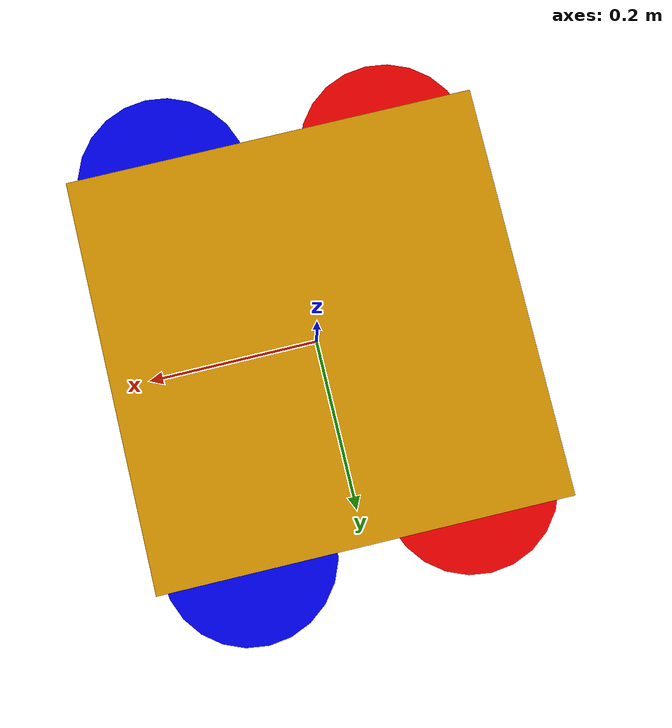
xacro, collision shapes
<?xml version="1.0"?>
<robot name="x3_uav_description" xmlns:xacro="http://ros.org/wiki/xacro">

  <!-- Include all component files -->
  <xacro:include filename="$(find x3_uav_description)/urdf/constants.xacro"/>
  <xacro:include filename="$(find x3_uav_description)/urdf/links.xacro"/>
  <xacro:include filename="$(find x3_uav_description)/urdf/joints.xacro"/>
  <xacro:include filename="$(find x3_uav_description)/urdf/sensors.xacro"/>
  <xacro:include filename="$(find x3_uav_description)/urdf/gazebo.xacro"/>

</robot>

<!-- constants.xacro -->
<robot xmlns:xacro="http://ros.org/wiki/xacro">

  <!-- ====================== ARGUMENTS ====================== -->
  <xacro:arg name="prefix" default=""/>
  <xacro:arg name="use_ignition" default="true"/>
  <xacro:arg name="use_plugin" default="true"/>

  <xacro:property name="prefix" value="$(arg prefix)"/>
  <xacro:property name="use_ignition" value="$(arg use_ignition)"/>
  <xacro:property name="use_plugin" value="$(arg use_plugin)"/>

  <xacro:property name="frame_prefix" value="${prefix + '/' if prefix else ''}"/>
  <xacro:property name="ns_prefix" value="${prefix if prefix else 'x3'}"/>

  <!-- ====================== MATERIALS ====================== -->
  <material name="blue">
    <color rgba="0 0 1 1"/>
  </material>
  <material name="red">
    <color rgba="1 0 0 1"/>
  </material>

</robot>

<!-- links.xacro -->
<robot xmlns:xacro="http://ros.org/wiki/xacro">

<!-- ====================== DUMMY BASE FOOTPRINT LINK (THIS FIXES TF TREE) ====================== -->

  <!-- ====================== BASE LINK ====================== -->
  <link name="${frame_prefix}base_link">
    <inertial>
      <origin xyz="0 0 0" rpy="0 0 0"/>
      <mass value="1.5"/>
      <inertia ixx="0.0347563" ixy="0" ixz="0"
               iyy="0.07"      iyz="0"
               izz="0.0977"/>
    </inertial>

    <collision name="base_link_inertia_collision">
      <origin xyz="0 0 0" rpy="0 0 0"/>
      <geometry>
        <box size="0.47 0.47 0.11"/>
      </geometry>
    </collision>

    <visual name="base_link_inertia_visual">
      <origin xyz="0 0 0" rpy="0 0 3.14159"/>
      <geometry>
        <mesh filename="package://x3_uav_description/meshes/x3.dae" scale="1 1 1"/>
      </geometry>
    </visual>
  </link>

  <!-- ====================== ROTOR 0 ====================== -->
  <link name="${frame_prefix}rotor_0">
    <inertial>
      <origin xyz="0 0 0" rpy="0 0 0"/>
      <mass value="0.005"/>
      <inertia ixx="9.75e-07" ixy="0" ixz="0"
               iyy="4.17041e-05" iyz="0"
               izz="4.26041e-05"/>
    </inertial>

    <collision name="rotor_0_collision">
      <origin xyz="0 0 0" rpy="0 0 0"/>
      <geometry>
        <cylinder radius="0.1" length="0.005"/>
      </geometry>
    </collision>

    <visual name="rotor_0_visual">
      <origin xyz="0 0 0" rpy="0 0 0"/>
      <geometry>
        <mesh filename="package://x3_uav_description/meshes/propeller_ccw.dae" scale="0.1 0.1 0.1"/>
      </geometry>
      <material name="blue"/>
    </visual>
  </link>

  <!-- ====================== ROTOR 1 ====================== -->
  <link name="${frame_prefix}rotor_1">
    <inertial>
      <origin xyz="0 0 0" rpy="0 0 0"/>
      <mass value="0.005"/>
      <inertia ixx="9.75e-07" ixy="0" ixz="0"
               iyy="4.17041e-05" iyz="0"
               izz="4.26041e-05"/>
    </inertial>

    <collision name="rotor_1_collision">
      <origin xyz="0 0 0" rpy="0 0 0"/>
      <geometry>
        <cylinder radius="0.1" length="0.005"/>
      </geometry>
    </collision>

    <visual name="rotor_1_visual">
      <origin xyz="0 0 0" rpy="0 0 0"/>
      <geometry>
        <mesh filename="package://x3_uav_description/meshes/propeller_ccw.dae" scale="0.1 0.1 0.1"/>
      </geometry>
      <material name="red"/>
    </visual>
  </link>

  <!-- ====================== ROTOR 2 ====================== -->
  <link name="${frame_prefix}rotor_2">
    <inertial>
      <origin xyz="0 0 0" rpy="0 0 0"/>
      <mass value="0.005"/>
      <inertia ixx="9.75e-07" ixy="0" ixz="0"
               iyy="4.17041e-05" iyz="0"
               izz="4.26041e-05"/>
    </inertial>

    <collision name="rotor_2_collision">
      <origin xyz="0 0 0" rpy="0 0 0"/>
      <geometry>
        <cylinder radius="0.1" length="0.005"/>
      </geometry>
    </collision>

    <visual name="rotor_2_visual">
      <origin xyz="0 0 0" rpy="0 0 0"/>
      <geometry>
        <mesh filename="package://x3_uav_description/meshes/propeller_cw.dae" scale="0.1 0.1 0.1"/>
      </geometry>
      <material name="blue"/>
    </visual>
  </link>

  <!-- ====================== ROTOR 3 ====================== -->
  <link name="${frame_prefix}rotor_3">
    <inertial>
      <origin xyz="0 0 0" rpy="0 0 0"/>
      <mass value="0.005"/>
      <inertia ixx="9.75e-07" ixy="0" ixz="0"
               iyy="4.17041e-05" iyz="0"
               izz="4.26041e-05"/>
    </inertial>

    <collision name="rotor_3_collision">
      <origin xyz="0 0 0" rpy="0 0 0"/>
      <geometry>
        <cylinder radius="0.1" length="0.005"/>
      </geometry>
    </collision>

    <visual name="rotor_3_visual">
      <origin xyz="0 0 0" rpy="0 0 0"/>
      <geometry>
        <mesh filename="package://x3_uav_description/meshes/propeller_cw.dae" scale="0.1 0.1 0.1"/>
      </geometry>
      <material name="red"/>
    </visual>
  </link>

  <!-- ====================== IMU LINK ====================== -->
  <link name="${frame_prefix}imu_link">
    <visual>
      <origin xyz="0 0 0.01" rpy="0 0 0"/>
      <geometry>
        <box size="0.03 0.03 0.01"/>
      </geometry>
    </visual>
    <inertial>
      <mass value="0.01"/>
      <origin xyz="0 0 0"/>
      <inertia ixx="1e-6" iyy="1e-6" izz="1e-6" ixy="0" ixz="0" iyz="0"/>
    </inertial>
  </link>

<!-- ====================== FRONT CAMERA LINK ====================== -->
<link name="${frame_prefix}front_camera_link">
  <visual>
    <origin xyz="0 0 0" rpy="0 0 0"/>
    <geometry>
      <box size="0.02 0.05 0.02"/>
    </geometry>
  </visual>
  <inertial>
    <mass value="0.01"/>
    <origin xyz="0 0 0"/>
    <inertia ixx="1e-6" iyy="1e-6" izz="1e-6" ixy="0" ixz="0" iyz="0"/>
  </inertial>
  <collision>
    <origin xyz="0 0 0" rpy="0 0 0"/>
    <geometry>
      <box size="0.02 0.05 0.02"/>
    </geometry>
  </collision>
</link>

<!-- ====================== BOTTOM CAMERA LINK ====================== -->
<link name="${frame_prefix}bottom_camera_link">
  <visual>
    <origin xyz="0 0 0" rpy="0 0 0"/>
    <geometry>
      <box size="0.02 0.05 0.02"/>
    </geometry>
  </visual>
  <inertial>
    <mass value="0.01"/>
    <origin xyz="0 0 0"/>
    <inertia ixx="1e-6" iyy="1e-6" izz="1e-6" ixy="0" ixz="0" iyz="0"/>
  </inertial>
  <collision>
    <origin xyz="0 0 0" rpy="0 0 0"/>
    <geometry>
      <box size="0.02 0.05 0.02"/>
    </geometry>
  </collision>
</link>

</robot>

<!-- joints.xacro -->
<robot xmlns:xacro="http://ros.org/wiki/xacro">

  <!-- ====================== BASE FOOTPRINT TO BASE JOINT ====================== -->

  <!-- ====================== ROTOR 0 JOINT ====================== -->
  <joint name="${frame_prefix}rotor_0_joint" type="revolute">
    <parent link="${frame_prefix}base_link"/>
    <child link="${frame_prefix}rotor_0"/>
    <origin xyz="0.13 -0.22 0.023" rpy="0 0 0"/>
    <axis xyz="0 0 1"/>
    <limit lower="-1e16" upper="1e16" effort="10" velocity="100"/>     <!-- for continuos joint remove this line-->
    <dynamics damping="0.0" friction="0.0"/>
  </joint>

  <!-- ====================== ROTOR 1 JOINT ====================== -->
  <joint name="${frame_prefix}rotor_1_joint" type="revolute">
    <parent link="${frame_prefix}base_link"/>
    <child link="${frame_prefix}rotor_1"/>
    <origin xyz="-0.13 0.2 0.023" rpy="0 0 0"/>
    <axis xyz="0 0 1"/>
    <limit lower="-1e16" upper="1e16" effort="10" velocity="100"/>     <!-- for continuos joint remove this line-->
    <dynamics damping="0.0" friction="0.0"/>
  </joint>

  <!-- ====================== ROTOR 2 JOINT ====================== -->
  <joint name="${frame_prefix}rotor_2_joint" type="revolute">
    <parent link="${frame_prefix}base_link"/>
    <child link="${frame_prefix}rotor_2"/>
    <origin xyz="0.13 0.22 0.023" rpy="0 0 0"/>
    <axis xyz="0 0 1"/>
    <limit lower="-1e16" upper="1e16" effort="10" velocity="100"/>     <!-- for continuos joint remove this line-->
    <dynamics damping="0.0" friction="0.0"/>
  </joint>

  <!-- ====================== ROTOR 3 JOINT ====================== -->
  <joint name="${frame_prefix}rotor_3_joint" type="revolute">
    <parent link="${frame_prefix}base_link"/>
    <child link="${frame_prefix}rotor_3"/>
    <origin xyz="-0.13 -0.2 0.023" rpy="0 0 0"/>
    <axis xyz="0 0 1"/>
    <limit lower="-1e16" upper="1e16" effort="10" velocity="100"/>     <!-- for continuos joint remove this line-->
    <dynamics damping="0.0" friction="0.0"/>
  </joint>

  <!-- ====================== IMU JOINT ====================== -->
  <joint name="${frame_prefix}imu_joint" type="fixed">
    <parent link="${frame_prefix}base_link"/>
    <child  link="${frame_prefix}imu_link"/>
    <origin xyz="0.0 0.0 0.01" rpy="0 0 0"/>
  </joint>

<!-- ====================== FRONT CAMERA JOINT ====================== -->
<joint name="${frame_prefix}front_camera_joint" type="fixed">
  <parent link="${frame_prefix}base_link"/>
  <child  link="${frame_prefix}front_camera_link"/>
  <origin xyz="0.15 0.0 0.0" rpy="0 0 0"/>  <!-- Front of drone, facing forward -->
</joint>

<!-- ====================== BOTTOM CAMERA JOINT ====================== -->
<joint name="${frame_prefix}bottom_camera_joint" type="fixed">
  <parent link="${frame_prefix}base_link"/>
  <child  link="${frame_prefix}bottom_camera_link"/>
  <origin xyz="0.0 0.0 -0.055" rpy="0 1.5708 0"/>  <!-- Bottom of drone, facing down (90° pitch) -->
</joint>

</robot>
